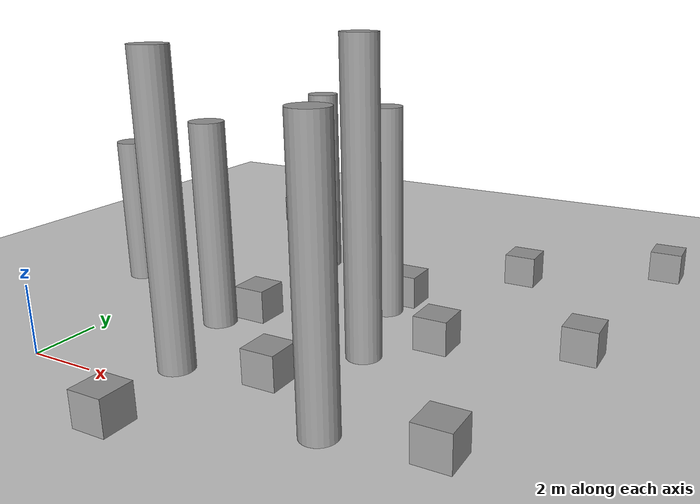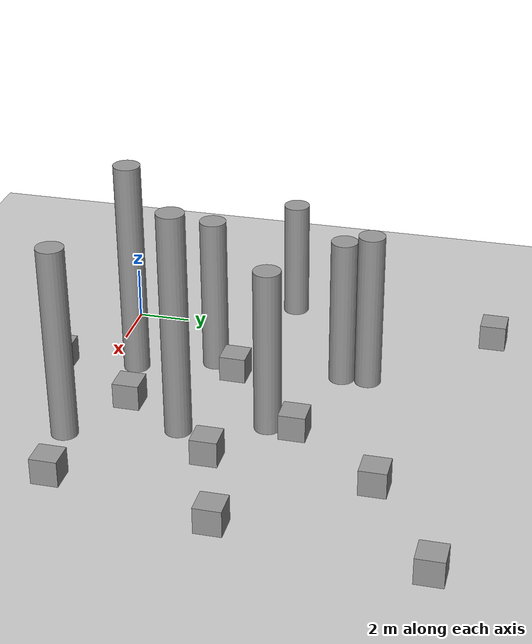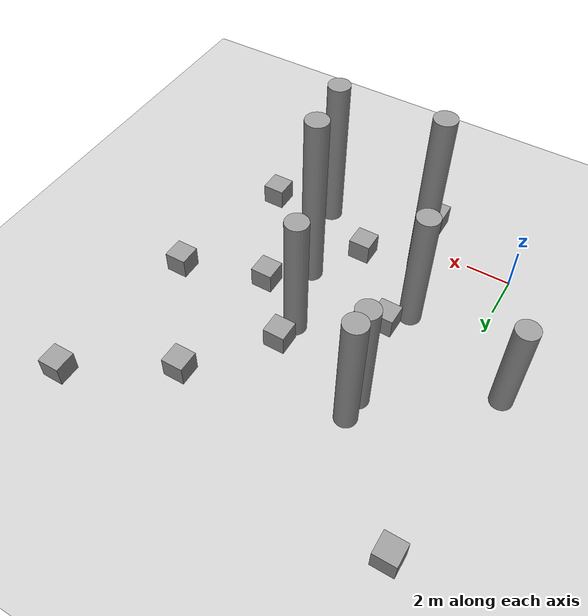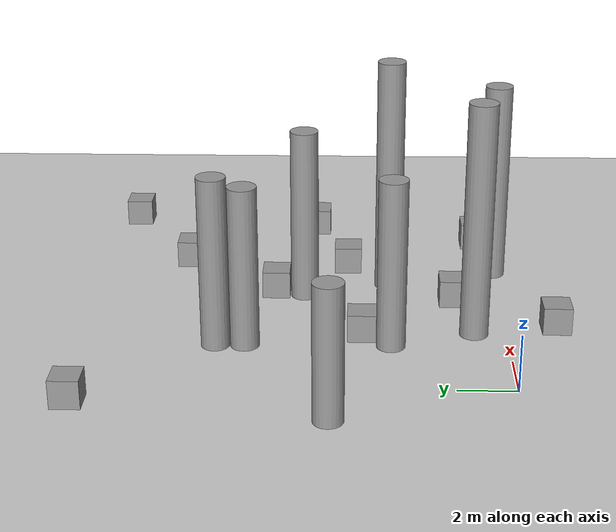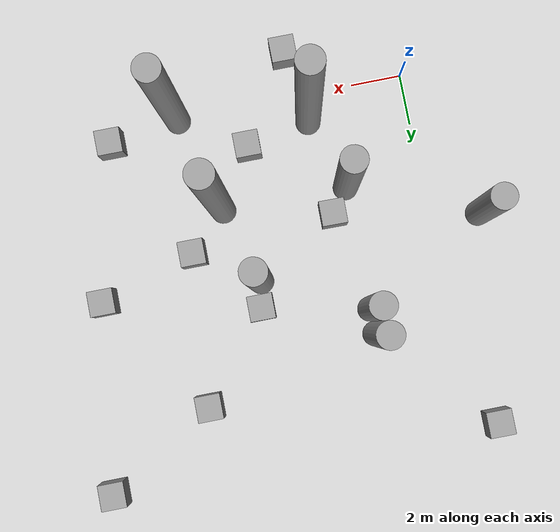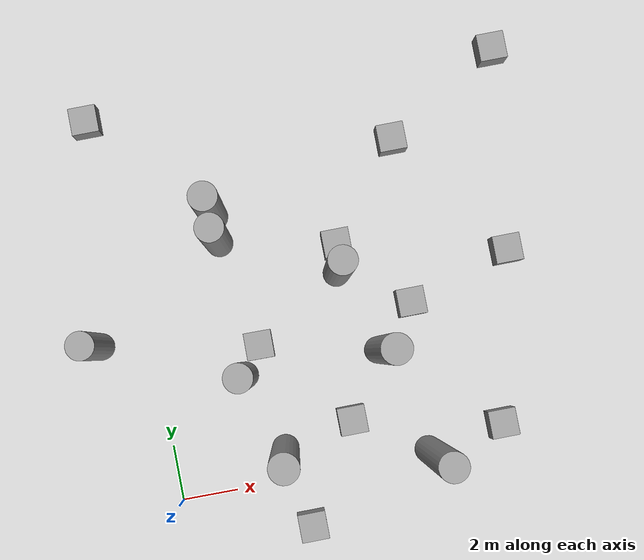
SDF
<sdf version="1.6">
 <world name="default">
  <light name="sun" type="directional">
   <cast_shadows>0</cast_shadows>
   <pose>0 0 10 0 -0 0</pose>
   <diffuse>0.8 0.8 0.8 1</diffuse>
   <specular>0.2 0.2 0.2 1</specular>
   <attenuation>
    <range>1000</range>
    <constant>0.9</constant>
    <linear>0.01</linear>
    <quadratic>0.001</quadratic>
   </attenuation>
   <direction>-0.5 0.1 -0.9</direction>
  </light>
  <model name="ground_plane">
   <static>1</static>
   <link name="link">
    <collision name="collision">
     <geometry><plane><normal>0 0 1</normal><size>100 100</size></plane></geometry>
     <surface><friction><ode><mu>100</mu><mu2>50</mu2></ode></friction></surface>
    </collision>
    <visual name="visual">
     <cast_shadows>0</cast_shadows>
     <geometry><plane><normal>0 0 1</normal><size>100 100</size></plane></geometry>
     <material>
      <script><uri>file://media/materials/scripts/gazebo.material</uri><name>Gazebo/Grey</name></script>
     </material>
    </visual>
   </link>
  </model>
  <gravity>0 0 -9.8</gravity>
  <magnetic_field>6e-06 2.3e-05 -4.2e-05</magnetic_field>
  <atmosphere type="adiabatic"/>
  <physics name="default_physics" default="0" type="ode">
   <max_step_size>0.001</max_step_size>
   <real_time_factor>1</real_time_factor>
   <real_time_update_rate>1000</real_time_update_rate>
  </physics>
  <scene><ambient>0.4 0.4 0.4 1</ambient><background>0.7 0.7 0.7 1</background><shadows>0</shadows></scene>
  <spherical_coordinates>
   <surface_model>EARTH_WGS84</surface_model>
   <latitude_deg>0</latitude_deg>
   <longitude_deg>0</longitude_deg>
   <elevation>0</elevation>
   <heading_deg>0</heading_deg>
  </spherical_coordinates>
  <model name="unit_box">
   <pose>3.77435 5.02729 0.499995 -1e-05 -0 -0.011796</pose>
   <link name="link">
    <inertial>
     <mass>1</mass>
     <inertia>
      <ixx>0.166667</ixx>
      <ixy>0</ixy>
      <ixz>0</ixz>
      <iyy>0.166667</iyy>
      <iyz>0</iyz>
      <izz>0.166667</izz>
     </inertia>
    </inertial>
    <collision name="collision"><geometry><box><size>1 1 1</size></box></geometry></collision>
    <visual name="visual">
     <geometry><box><size>1 1 1</size></box></geometry>
     <material>
      <script><name>Gazebo/Grey</name><uri>file://media/materials/scripts/gazebo.material</uri></script>
     </material>
    </visual>
   </link>
  </model>
  <model name="unit_box_0">
   <pose>6.58811 1.72796 0.5 0 -0 2e-06</pose>
   <link name="link">
    <inertial>
     <mass>1</mass>
     <inertia>
      <ixx>0.166667</ixx>
      <ixy>0</ixy>
      <ixz>0</ixz>
      <iyy>0.166667</iyy>
      <iyz>0</iyz>
      <izz>0.166667</izz>
     </inertia>
    </inertial>
    <collision name="collision"><geometry><box><size>1 1 1</size></box></geometry></collision>
    <visual name="visual">
     <geometry><box><size>1 1 1</size></box></geometry>
     <material>
      <script><name>Gazebo/Grey</name><uri>file://media/materials/scripts/gazebo.material</uri></script>
     </material>
    </visual>
   </link>
  </model>
  <model name="unit_box_1">
   <pose>-0.977403 14.3044 0.5 0 -0 2e-06</pose>
   <link name="link">
    <inertial>
     <mass>1</mass>
     <inertia>
      <ixx>0.166667</ixx>
      <ixy>0</ixy>
      <ixz>0</ixz>
      <iyy>0.166667</iyy>
      <iyz>0</iyz>
      <izz>0.166667</izz>
     </inertia>
    </inertial>
    <collision name="collision"><geometry><box><size>1 1 1</size></box></geometry></collision>
    <visual name="visual">
     <geometry><box><size>1 1 1</size></box></geometry>
     <material>
      <script><name>Gazebo/Grey</name><uri>file://media/materials/scripts/gazebo.material</uri></script>
     </material>
    </visual>
   </link>
  </model>
  <model name="unit_box_5">
   <pose>9.95069 11.5757 0.5 0 -0 2e-06</pose>
   <link name="link">
    <inertial>
     <mass>1</mass>
     <inertia>
      <ixx>0.166667</ixx>
      <ixy>0</ixy>
      <ixz>0</ixz>
      <iyy>0.166667</iyy>
      <iyz>0</iyz>
      <izz>0.166667</izz>
     </inertia>
    </inertial>
    <collision name="collision"><geometry><box><size>1 1 1</size></box></geometry></collision>
    <visual name="visual">
     <geometry><box><size>1 1 1</size></box></geometry>
     <material>
      <script><name>Gazebo/Grey</name><uri>file://media/materials/scripts/gazebo.material</uri></script>
     </material>
    </visual>
   </link>
  </model>
  <model name="unit_box_6">
   <pose>13.3114 6.77554 0.5 0 -0 2e-06</pose>
   <link name="link">
    <inertial>
     <mass>1</mass>
     <inertia>
      <ixx>0.166667</ixx>
      <ixy>0</ixy>
      <ixz>0</ixz>
      <iyy>0.166667</iyy>
      <iyz>0</iyz>
      <izz>0.166667</izz>
     </inertia>
    </inertial>
    <collision name="collision"><geometry><box><size>1 1 1</size></box></geometry></collision>
    <visual name="visual">
     <geometry><box><size>1 1 1</size></box></geometry>
     <material>
      <script><name>Gazebo/Grey</name><uri>file://media/materials/scripts/gazebo.material</uri></script>
     </material>
    </visual>
   </link>
  </model>
  <model name="unit_box_7">
   <pose>11.9129 0.597794 0.5 0 -0 2e-06</pose>
   <link name="link">
    <inertial>
     <mass>1</mass>
     <inertia>
      <ixx>0.166667</ixx>
      <ixy>0</ixy>
      <ixz>0</ixz>
      <iyy>0.166667</iyy>
      <iyz>0</iyz>
      <izz>0.166667</izz>
     </inertia>
    </inertial>
    <collision name="collision"><geometry><box><size>1 1 1</size></box></geometry></collision>
    <visual name="visual">
     <geometry><box><size>1 1 1</size></box></geometry>
     <material>
      <script><name>Gazebo/Grey</name><uri>file://media/materials/scripts/gazebo.material</uri></script>
     </material>
    </visual>
   </link>
  </model>
  <model name="unit_box_8">
   <pose>7.24466 8.14604 0.5 0 -0 2e-06</pose>
   <link name="link">
    <inertial>
     <mass>1</mass>
     <inertia>
      <ixx>0.166667</ixx>
      <ixy>0</ixy>
      <ixz>0</ixz>
      <iyy>0.166667</iyy>
      <iyz>0</iyz>
      <izz>0.166667</izz>
     </inertia>
    </inertial>
    <collision name="collision"><geometry><box><size>1 1 1</size></box></geometry></collision>
    <visual name="visual">
     <geometry><box><size>1 1 1</size></box></geometry>
     <material>
      <script><name>Gazebo/Grey</name><uri>file://media/materials/scripts/gazebo.material</uri></script>
     </material>
    </visual>
   </link>
  </model>
  <model name="unit_box_9">
   <pose>14.2069 14.1643 0.5 0 -0 2e-06</pose>
   <link name="link">
    <inertial>
     <mass>1</mass>
     <inertia>
      <ixx>0.166667</ixx>
      <ixy>0</ixy>
      <ixz>0</ixz>
      <iyy>0.166667</iyy>
      <iyz>0</iyz>
      <izz>0.166667</izz>
     </inertia>
    </inertial>
    <collision name="collision"><geometry><box><size>1 1 1</size></box></geometry></collision>
    <visual name="visual">
     <geometry><box><size>1 1 1</size></box></geometry>
     <material>
      <script><name>Gazebo/Grey</name><uri>file://media/materials/scripts/gazebo.material</uri></script>
     </material>
    </visual>
   </link>
  </model>
  <model name="unit_box_11">
   <pose>4.47934 -1.74011 0.5 0 -0 2e-06</pose>
   <link name="link">
    <inertial>
     <mass>1</mass>
     <inertia>
      <ixx>0.166667</ixx>
      <ixy>0</ixy>
      <ixz>0</ixz>
      <iyy>0.166667</iyy>
      <iyz>0</iyz>
      <izz>0.166667</izz>
     </inertia>
    </inertial>
    <collision name="collision"><geometry><box><size>1 1 1</size></box></geometry></collision>
    <visual name="visual">
     <geometry><box><size>1 1 1</size></box></geometry>
     <material>
      <script><name>Gazebo/Grey</name><uri>file://media/materials/scripts/gazebo.material</uri></script>
     </material>
    </visual>
   </link>
  </model>
  <model name="unit_box_12">
   <pose>9.50501 5.53703 0.5 0 -0 2e-06</pose>
   <link name="link">
    <inertial>
     <mass>1</mass>
     <inertia>
      <ixx>0.166667</ixx>
      <ixy>0</ixy>
      <ixz>0</ixz>
      <iyy>0.166667</iyy>
      <iyz>0</iyz>
      <izz>0.166667</izz>
     </inertia>
    </inertial>
    <collision name="collision"><geometry><box><size>1 1 1</size></box></geometry></collision>
    <visual name="visual">
     <geometry><box><size>1 1 1</size></box></geometry>
     <material>
      <script><name>Gazebo/Grey</name><uri>file://media/materials/scripts/gazebo.material</uri></script>
     </material>
    </visual>
   </link>
  </model>
  <model name="unit_cylinder">
   <pose>4.01341 1.14763 4.18229 0 -0 8.5e-05</pose>
   <link name="link">
    <inertial>
     <mass>1</mass>
     <inertia><ixx>0.145833</ixx><ixy>0</ixy><ixz>0</ixz><iyy>0.145833</iyy><iyz>0</iyz><izz>0.125</izz></inertia>
    </inertial>
    <collision name="collision">
     <geometry><cylinder><radius>0.5</radius><length>8.36458</length></cylinder></geometry>
    </collision>
    <visual name="visual">
     <geometry><cylinder><radius>0.5</radius><length>8.36458</length></cylinder></geometry>
     <material>
      <script><name>Gazebo/Grey</name><uri>file://media/materials/scripts/gazebo.material</uri></script>
     </material>
    </visual>
   </link>
  </model>
  <model name="unit_cylinder_1">
   <pose>3.03306 9.01221 2.88534 0 -0 -0.003941</pose>
   <link name="link">
    <inertial>
     <mass>1</mass>
     <inertia><ixx>0.145833</ixx><ixy>0</ixy><ixz>0</ixz><iyy>0.145833</iyy><iyz>0</iyz><izz>0.125</izz></inertia>
    </inertial>
    <collision name="collision">
     <geometry><cylinder><radius>0.5</radius><length>5.77069</length></cylinder></geometry>
    </collision>
    <visual name="visual">
     <geometry><cylinder><radius>0.5</radius><length>5.77069</length></cylinder></geometry>
     <material>
      <script><name>Gazebo/Grey</name><uri>file://media/materials/scripts/gazebo.material</uri></script>
     </material>
    </visual>
   </link>
  </model>
  <model name="unit_cylinder_2">
   <pose>3.02697 10.0122 3.05011 0 -0 0.000812</pose>
   <link name="link">
    <inertial>
     <mass>1</mass>
     <inertia><ixx>0.145833</ixx><ixy>0</ixy><ixz>0</ixz><iyy>0.145833</iyy><iyz>0</iyz><izz>0.125</izz></inertia>
    </inertial>
    <collision name="collision">
     <geometry><cylinder><radius>0.5</radius><length>6.10024</length></cylinder></geometry>
    </collision>
    <visual name="visual">
     <geometry><cylinder><radius>0.5</radius><length>6.10024</length></cylinder></geometry>
     <material>
      <script><name>Gazebo/Grey</name><uri>file://media/materials/scripts/gazebo.material</uri></script>
     </material>
    </visual>
   </link>
  </model>
  <model name="unit_cylinder_3">
   <pose>7.06675 7.11147 3.16952 0 -0 0.000154</pose>
   <link name="link">
    <inertial>
     <mass>1</mass>
     <inertia><ixx>0.145833</ixx><ixy>0</ixy><ixz>0</ixz><iyy>0.145833</iyy><iyz>0</iyz><izz>0.125</izz></inertia>
    </inertial>
    <collision name="collision">
     <geometry><cylinder><radius>0.5</radius><length>6.33905</length></cylinder></geometry>
    </collision>
    <visual name="visual">
     <geometry><cylinder><radius>0.5</radius><length>6.33905</length></cylinder></geometry>
     <material>
      <script><name>Gazebo/Grey</name><uri>file://media/materials/scripts/gazebo.material</uri></script>
     </material>
    </visual>
   </link>
  </model>
  <model name="unit_cylinder_0">
   <pose>3.0512 4.04369 3.02313 0 -0 0.000124</pose>
   <link name="link">
    <inertial>
     <mass>1</mass>
     <inertia><ixx>0.145833</ixx><ixy>0</ixy><ixz>0</ixz><iyy>0.145833</iyy><iyz>0</iyz><izz>0.125</izz></inertia>
    </inertial>
    <collision name="collision">
     <geometry><cylinder><radius>0.5</radius><length>6.04629</length></cylinder></geometry>
    </collision>
    <visual name="visual">
     <geometry><cylinder><radius>0.5</radius><length>6.04629</length></cylinder></geometry>
     <material>
      <script><name>Gazebo/Grey</name><uri>file://media/materials/scripts/gazebo.material</uri></script>
     </material>
    </visual>
   </link>
  </model>
  <model name="unit_cylinder_4">
   <pose>8.02463 4.03511 4.30239 -0 -0 -0.003671</pose>
   <link name="link">
    <inertial>
     <mass>1</mass>
     <inertia><ixx>0.145833</ixx><ixy>0</ixy><ixz>0</ixz><iyy>0.145833</iyy><iyz>0</iyz><izz>0.125</izz></inertia>
    </inertial>
    <collision name="collision">
     <geometry><cylinder><radius>0.5</radius><length>8.60477</length></cylinder></geometry>
    </collision>
    <visual name="visual">
     <geometry><cylinder><radius>0.5</radius><length>8.60477</length></cylinder></geometry>
     <material>
      <script><name>Gazebo/Grey</name><uri>file://media/materials/scripts/gazebo.material</uri></script>
     </material>
    </visual>
   </link>
  </model>
  <model name="unit_cylinder_5">
   <pose>-1.96289 6.07422 2.34368 -0 -0 -0.000238</pose>
   <link name="link">
    <inertial>
     <mass>1</mass>
     <inertia><ixx>0.145833</ixx><ixy>0</ixy><ixz>0</ixz><iyy>0.145833</iyy><iyz>0</iyz><izz>0.125</izz></inertia>
    </inertial>
    <collision name="collision">
     <geometry><cylinder><radius>0.5</radius><length>4.68736</length></cylinder></geometry>
    </collision>
    <visual name="visual">
     <geometry><cylinder><radius>0.5</radius><length>4.68736</length></cylinder></geometry>
     <material>
      <script><name>Gazebo/Grey</name><uri>file://media/materials/scripts/gazebo.material</uri></script>
     </material>
    </visual>
   </link>
  </model>
  <model name="unit_cylinder_6">
   <pose>9.14638 0.113568 3.70445 -0 -0 -0.000264</pose>
   <link name="link">
    <inertial>
     <mass>1</mass>
     <inertia><ixx>0.145833</ixx><ixy>0</ixy><ixz>0</ixz><iyy>0.145833</iyy><iyz>0</iyz><izz>0.125</izz></inertia>
    </inertial>
    <collision name="collision">
     <geometry><cylinder><radius>0.5</radius><length>7.40891</length></cylinder></geometry>
    </collision>
    <visual name="visual">
     <geometry><cylinder><radius>0.5</radius><length>7.40891</length></cylinder></geometry>
     <material>
      <script><name>Gazebo/Grey</name><uri>file://media/materials/scripts/gazebo.material</uri></script>
     </material>
    </visual>
   </link>
  </model>
  <light name="user_spot_light_0" type="spot">
   <pose>9.91663 9.9565 1 0 -0 0</pose>
   <diffuse>0.5 0.5 0.5 1</diffuse>
   <specular>0.1 0.1 0.1 1</specular>
   <direction>0 0 -1</direction>
   <attenuation>
    <range>20</range>
    <constant>0.5</constant>
    <linear>0.01</linear>
    <quadratic>0.001</quadratic>
   </attenuation>
   <cast_shadows>0</cast_shadows>
   <spot><inner_angle>0.6</inner_angle><outer_angle>1</outer_angle><falloff>1</falloff></spot>
  </light>
  <light name="user_spot_light_1" type="spot">
   <pose>0.00035 9.92136 1 0 -0 0</pose>
   <diffuse>0.5 0.5 0.5 1</diffuse>
   <specular>0.1 0.1 0.1 1</specular>
   <direction>0 0 -1</direction>
   <attenuation>
    <range>20</range>
    <constant>0.5</constant>
    <linear>0.01</linear>
    <quadratic>0.001</quadratic>
   </attenuation>
   <cast_shadows>0</cast_shadows>
   <spot><inner_angle>0.6</inner_angle><outer_angle>1</outer_angle><falloff>1</falloff></spot>
  </light>
 </world>
</sdf>
